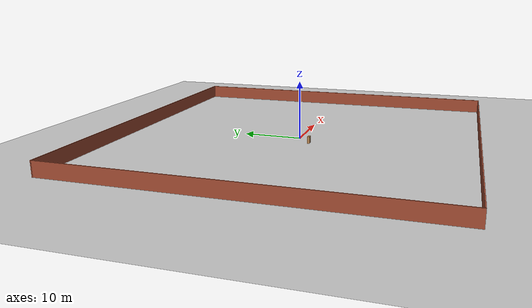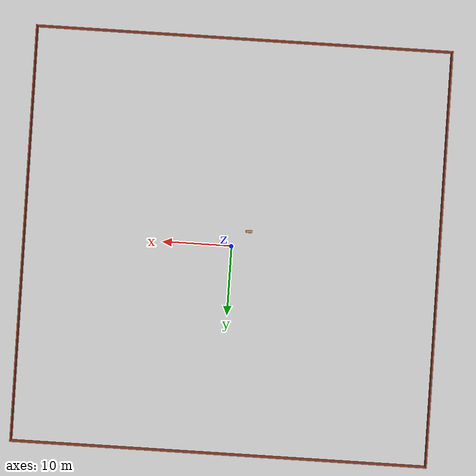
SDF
<sdf version="1.6">
 <world name="default">
  <model name="ground_plane">
   <static>1</static>
   <link name="link">
    <collision name="collision">
     <geometry><plane><normal>0 0 1</normal><size>100 100</size></plane></geometry>
     <surface>
      <contact><collide_bitmask>65535</collide_bitmask></contact>
      <friction><ode><mu>100</mu><mu2>50</mu2></ode></friction>
     </surface>
    </collision>
    <visual name="visual">
     <cast_shadows>0</cast_shadows>
     <geometry><plane><normal>0 0 1</normal><size>100 100</size></plane></geometry>
     <material>
      <script><uri>file://media/materials/scripts/gazebo.material</uri><name>Gazebo/Grey</name></script>
     </material>
    </visual>
   </link>
  </model>
  <model name="wall_60">
   <link name="Wall_0">
    <collision name="Wall_0_Collision">
     <geometry><box><size>60.15 0.15 2.5</size></box></geometry>
     <pose>0 0 1.25 0 -0 0</pose>
    </collision>
    <visual name="Wall_0_Visual">
     <pose>0 0 1.25 0 -0 0</pose>
     <geometry><box><size>60.15 0.15 2.5</size></box></geometry>
     <material>
      <script><uri>file://media/materials/scripts/gazebo.material</uri><name>Gazebo/Bricks</name></script>
      <ambient>1 1 1 1</ambient>
     </material>
     <meta><layer>0</layer></meta>
    </visual>
    <pose>0 30 0 0 -0 3.14159</pose>
   </link>
   <link name="Wall_2">
    <collision name="Wall_2_Collision">
     <geometry><box><size>60.15 0.15 2.5</size></box></geometry>
     <pose>0 0 1.25 0 -0 0</pose>
    </collision>
    <visual name="Wall_2_Visual">
     <pose>0 0 1.25 0 -0 0</pose>
     <geometry><box><size>60.15 0.15 2.5</size></box></geometry>
     <material>
      <script><uri>file://media/materials/scripts/gazebo.material</uri><name>Gazebo/Bricks</name></script>
      <ambient>1 1 1 1</ambient>
     </material>
     <meta><layer>0</layer></meta>
    </visual>
    <pose>-30 0 0 0 -0 -1.5708</pose>
   </link>
   <link name="Wall_4">
    <collision name="Wall_4_Collision">
     <geometry><box><size>60.15 0.15 2.5</size></box></geometry>
     <pose>0 0 1.25 0 -0 0</pose>
    </collision>
    <visual name="Wall_4_Visual">
     <pose>0 0 1.25 0 -0 0</pose>
     <geometry><box><size>60.15 0.15 2.5</size></box></geometry>
     <material>
      <script><uri>file://media/materials/scripts/gazebo.material</uri><name>Gazebo/Bricks</name></script>
      <ambient>1 1 1 1</ambient>
     </material>
     <meta><layer>0</layer></meta>
    </visual>
    <pose>0 -30 0 0 -0 0</pose>
   </link>
   <link name="Wall_6">
    <collision name="Wall_6_Collision">
     <geometry><box><size>60.15 0.15 2.5</size></box></geometry>
     <pose>0 0 1.25 0 -0 0</pose>
    </collision>
    <visual name="Wall_6_Visual">
     <pose>0 0 1.25 0 -0 0</pose>
     <geometry><box><size>60.15 0.15 2.5</size></box></geometry>
     <material>
      <script><uri>file://media/materials/scripts/gazebo.material</uri><name>Gazebo/Bricks</name></script>
      <ambient>1 1 1 1</ambient>
     </material>
     <meta><layer>0</layer></meta>
    </visual>
    <pose>30 0 0 0 -0 -1.5708</pose>
   </link>
   <static>1</static>
  </model>
  <model name="bookshelf_clone_2_clone_clone_0_clone_3_clone_0_clone_clone_2">
   <static>1</static>
   <link name="link">
    <inertial><mass>1</mass></inertial>
    <collision name="back">
     <pose>0 0.005 0.6 0 -0 0</pose>
     <geometry><box><size>0.9 0.01 1.2</size></box></geometry>
    </collision>
    <visual name="visual1">
     <pose>0 0.005 0.6 0 -0 0</pose>
     <geometry><box><size>0.9 0.01 1.2</size></box></geometry>
     <material>
      <script><uri>file://media/materials/scripts/gazebo.material</uri><name>Gazebo/Wood</name></script>
     </material>
    </visual>
    <collision name="left_side">
     <pose>0.45 -0.195 0.6 0 -0 0</pose>
     <geometry><box><size>0.02 0.4 1.2</size></box></geometry>
    </collision>
    <visual name="visual2">
     <pose>0.45 -0.195 0.6 0 -0 0</pose>
     <geometry><box><size>0.02 0.4 1.2</size></box></geometry>
     <material>
      <script><uri>file://media/materials/scripts/gazebo.material</uri><name>Gazebo/Wood</name></script>
     </material>
    </visual>
    <collision name="right_side">
     <pose>-0.45 -0.195 0.6 0 -0 0</pose>
     <geometry><box><size>0.02 0.4 1.2</size></box></geometry>
    </collision>
    <visual name="visual3">
     <pose>-0.45 -0.195 0.6 0 -0 0</pose>
     <geometry><box><size>0.02 0.4 1.2</size></box></geometry>
     <material>
      <script><uri>file://media/materials/scripts/gazebo.material</uri><name>Gazebo/Wood</name></script>
     </material>
    </visual>
    <collision name="bottom">
     <pose>0 -0.195 0.03 0 -0 0</pose>
     <geometry><box><size>0.88 0.4 0.06</size></box></geometry>
    </collision>
    <visual name="visual4">
     <pose>0 -0.195 0.03 0 -0 0</pose>
     <geometry><box><size>0.88 0.4 0.06</size></box></geometry>
     <material>
      <script><uri>file://media/materials/scripts/gazebo.material</uri><name>Gazebo/Wood</name></script>
     </material>
    </visual>
    <collision name="top">
     <pose>0 -0.195 1.19 0 -0 0</pose>
     <geometry><box><size>0.88 0.4 0.02</size></box></geometry>
    </collision>
    <visual name="visual5">
     <pose>0 -0.195 1.19 0 -0 0</pose>
     <geometry><box><size>0.88 0.4 0.02</size></box></geometry>
     <material>
      <script><uri>file://media/materials/scripts/gazebo.material</uri><name>Gazebo/Wood</name></script>
     </material>
    </visual>
    <collision name="low_shelf">
     <pose>0 -0.195 0.43 0 -0 0</pose>
     <geometry><box><size>0.88 0.4 0.02</size></box></geometry>
    </collision>
    <visual name="visual6">
     <pose>0 -0.195 0.43 0 -0 0</pose>
     <geometry><box><size>0.88 0.4 0.02</size></box></geometry>
     <material>
      <script><uri>file://media/materials/scripts/gazebo.material</uri><name>Gazebo/Wood</name></script>
     </material>
    </visual>
    <collision name="high_shelf">
     <pose>0 -0.195 0.8 0 -0 0</pose>
     <geometry><box><size>0.88 0.4 0.02</size></box></geometry>
    </collision>
    <visual name="visual7">
     <pose>0 -0.195 0.8 0 -0 0</pose>
     <geometry><box><size>0.88 0.4 0.02</size></box></geometry>
     <material>
      <script><uri>file://media/materials/scripts/gazebo.material</uri><name>Gazebo/Wood</name></script>
     </material>
    </visual>
   </link>
   <pose>-2.39602 -2.51993 0 0 0 -3.10717</pose>
  </model>
 </world>
</sdf>
